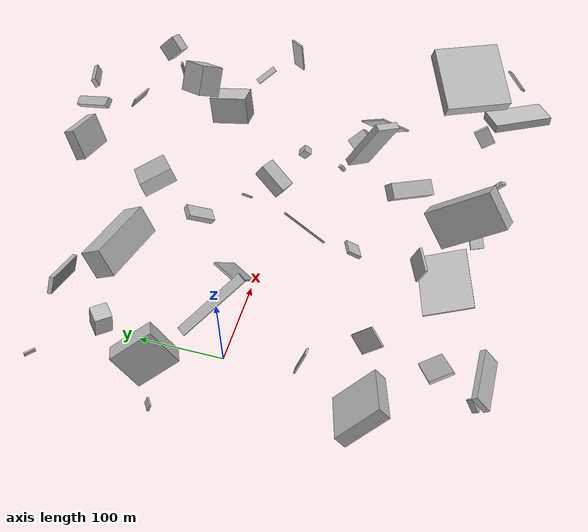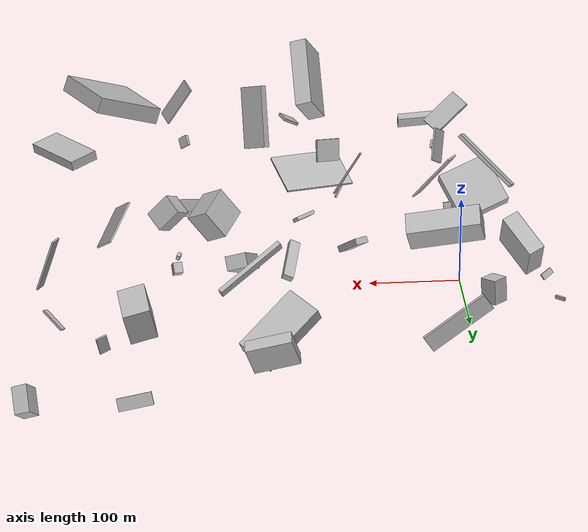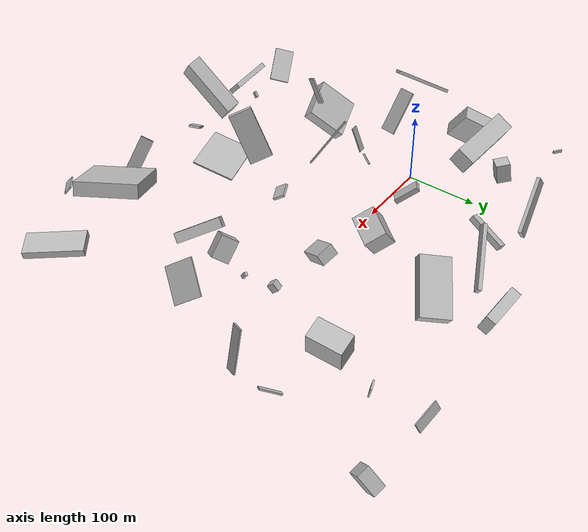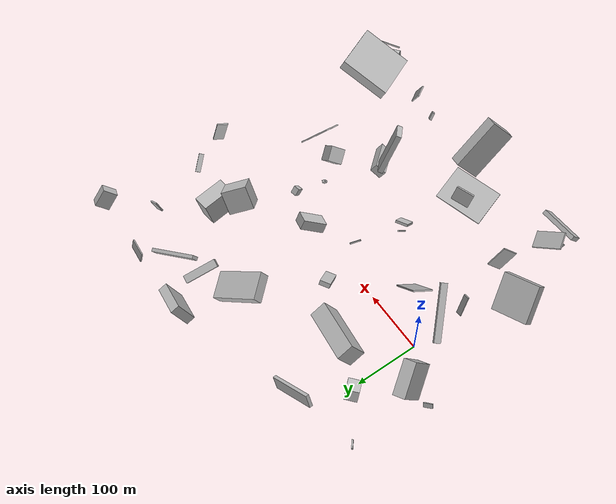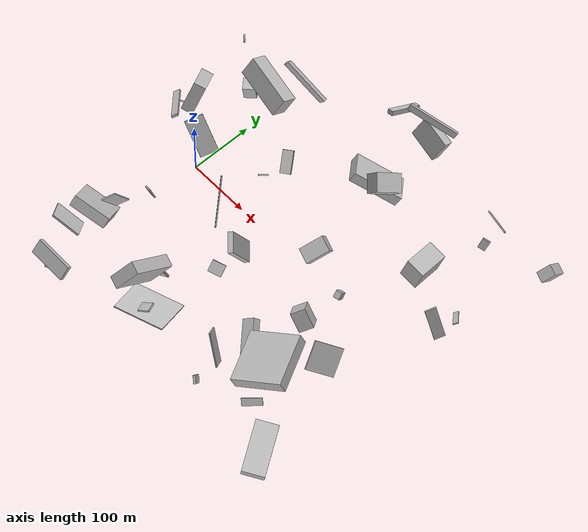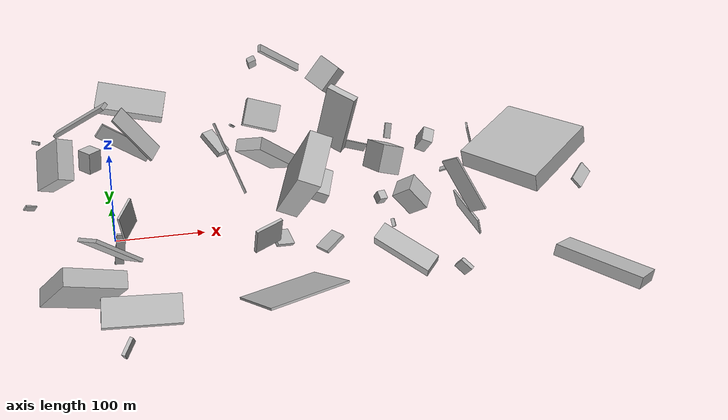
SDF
<sdf version="1.6">
 <world name="default">
  <scene>
   <sky><clouds><speed>12</speed></clouds></sky>
   <ambient>0.4 0.4 0.4 1</ambient>
   <background>0.7 0.7 0.7 1</background>
   <shadows>1</shadows>
  </scene>
  <gravity>0 0 -9.8066</gravity>
  <magnetic_field>6e-06 2.3e-05 -4.2e-05</magnetic_field>
  <physics default="0" name="default_physics" type="ode">
   <ode>
    <solver>
     <type>quick</type>
     <iters>10</iters>
     <sor>1.0</sor>
     <use_dynamic_moi_rescaling>0</use_dynamic_moi_rescaling>
    </solver>
    <constraints>
     <cfm>0</cfm>
     <erp>0.2</erp>
     <contact_max_correcting_vel>100</contact_max_correcting_vel>
     <contact_surface_layer>0.001</contact_surface_layer>
    </constraints>
   </ode>
   <max_step_size>0.004</max_step_size>
   <real_time_factor>1</real_time_factor>
   <real_time_update_rate>250</real_time_update_rate>
  </physics>
  <light name="sun" type="directional">
   <pose>0 0 10 0 0 0</pose>
   <diffuse>0.8 0.8 0.8 1</diffuse>
   <specular>0.2 0.2 0.2 1</specular>
   <attenuation>
    <range>1000</range>
    <constant>0.9</constant>
    <linear>0.01</linear>
    <quadratic>0.001</quadratic>
   </attenuation>
   <direction>-0.5 0.1 -0.9</direction>
  </light>
  <model name="building_1">
   <static>0</static>
   <pose>404.5158541136179 -255.42333435337554 122.44898582381987 -0.7624502686276993 -0.21771338707188184 0.7183787056705205</pose>
   <link name="link">
    <gravity>0</gravity>
    <pose>0 0 5.5 0 0 0</pose>
    <collision name="collision"><geometry><box><size>30 2 11</size></box></geometry></collision>
    <visual name="visual">
     <cast_shadows>0</cast_shadows>
     <geometry><box><size>30 2 11</size></box></geometry>
     <material>
      <script>
       <uri>model://HANNAS_wall/materials/scripts</uri>
       <uri>model://HANNAS_wall/materials/textures</uri>
       <name>vrc/HANNAS_wall</name>
      </script>
     </material>
    </visual>
   </link>
  </model>
  <model name="building_2">
   <static>0</static>
   <pose>-15.913608120768126 -220.39715237331205 89.95994051570334 1.1937777440840527 -0.8884978053453721 0.8804246469357664</pose>
   <link name="link">
    <gravity>0</gravity>
    <pose>0 0 13.0 0 0 0</pose>
    <collision name="collision"><geometry><box><size>3 47 26</size></box></geometry></collision>
    <visual name="visual">
     <cast_shadows>0</cast_shadows>
     <geometry><box><size>3 47 26</size></box></geometry>
     <material>
      <script>
       <uri>model://HANNAS_wall/materials/scripts</uri>
       <uri>model://HANNAS_wall/materials/textures</uri>
       <name>vrc/HANNAS_wall</name>
      </script>
     </material>
    </visual>
   </link>
  </model>
  <model name="building_3">
   <static>0</static>
   <pose>2.4273633094352762 -165.36447460527734 81.54105770859468 0.9768440852481814 -0.19734107897199302 2.614610898109586</pose>
   <link name="link">
    <gravity>0</gravity>
    <pose>0 0 11.5 0 0 0</pose>
    <collision name="collision"><geometry><box><size>2 37 23</size></box></geometry></collision>
    <visual name="visual">
     <cast_shadows>0</cast_shadows>
     <geometry><box><size>2 37 23</size></box></geometry>
     <material>
      <script>
       <uri>model://HANNAS_wall/materials/scripts</uri>
       <uri>model://HANNAS_wall/materials/textures</uri>
       <name>vrc/HANNAS_wall</name>
      </script>
     </material>
    </visual>
   </link>
  </model>
  <model name="building_4">
   <static>0</static>
   <pose>280.5730363883797 -154.8163963665489 28.461874816862295 2.4932673308005247 -0.3519441427999182 2.320280759417386</pose>
   <link name="link">
    <gravity>0</gravity>
    <pose>0 0 7.0 0 0 0</pose>
    <collision name="collision"><geometry><box><size>64 20 14</size></box></geometry></collision>
    <visual name="visual">
     <cast_shadows>0</cast_shadows>
     <geometry><box><size>64 20 14</size></box></geometry>
     <material>
      <script>
       <uri>model://HANNAS_wall/materials/scripts</uri>
       <uri>model://HANNAS_wall/materials/textures</uri>
       <name>vrc/HANNAS_wall</name>
      </script>
     </material>
    </visual>
   </link>
  </model>
  <model name="building_5">
   <static>0</static>
   <pose>209.34062145666257 217.79684176931468 153.42818705802267 -2.0086564979900534 0.3584459245184165 1.33781659191783</pose>
   <link name="link">
    <gravity>0</gravity>
    <pose>0 0 5.5 0 0 0</pose>
    <collision name="collision"><geometry><box><size>48 7 11</size></box></geometry></collision>
    <visual name="visual">
     <cast_shadows>0</cast_shadows>
     <geometry><box><size>48 7 11</size></box></geometry>
     <material>
      <script>
       <uri>model://HANNAS_wall/materials/scripts</uri>
       <uri>model://HANNAS_wall/materials/textures</uri>
       <name>vrc/HANNAS_wall</name>
      </script>
     </material>
    </visual>
   </link>
  </model>
  <model name="building_6">
   <static>0</static>
   <pose>221.3644481189088 -108.69629243077789 155.66329210517674 1.9019189378703016 0.35708411591068084 -0.739054854392633</pose>
   <link name="link">
    <gravity>0</gravity>
    <pose>0 0 4.0 0 0 0</pose>
    <collision name="collision"><geometry><box><size>30 68 8</size></box></geometry></collision>
    <visual name="visual">
     <cast_shadows>0</cast_shadows>
     <geometry><box><size>30 68 8</size></box></geometry>
     <material>
      <script>
       <uri>model://HANNAS_wall/materials/scripts</uri>
       <uri>model://HANNAS_wall/materials/textures</uri>
       <name>vrc/HANNAS_wall</name>
      </script>
     </material>
    </visual>
   </link>
  </model>
  <model name="building_7">
   <static>0</static>
   <pose>-34.07539028603997 -157.18862265309875 34.12260199763272 -2.424806915399598 -0.30116521131381757 -2.8539929199996967</pose>
   <link name="link">
    <gravity>0</gravity>
    <pose>0 0 8.5 0 0 0</pose>
    <collision name="collision"><geometry><box><size>59 59 17</size></box></geometry></collision>
    <visual name="visual">
     <cast_shadows>0</cast_shadows>
     <geometry><box><size>59 59 17</size></box></geometry>
     <material>
      <script>
       <uri>model://HANNAS_wall/materials/scripts</uri>
       <uri>model://HANNAS_wall/materials/textures</uri>
       <name>vrc/HANNAS_wall</name>
      </script>
     </material>
    </visual>
   </link>
  </model>
  <model name="building_8">
   <static>0</static>
   <pose>-52.32870671792048 15.051625144750112 123.44848041448307 -0.6381436687681178 -0.9109618876697785 3.136801920742593</pose>
   <link name="link">
    <gravity>0</gravity>
    <pose>0 0 40.0 0 0 0</pose>
    <collision name="collision"><geometry><box><size>4 10 80</size></box></geometry></collision>
    <visual name="visual">
     <cast_shadows>0</cast_shadows>
     <geometry><box><size>4 10 80</size></box></geometry>
     <material>
      <script>
       <uri>model://HANNAS_wall/materials/scripts</uri>
       <uri>model://HANNAS_wall/materials/textures</uri>
       <name>vrc/HANNAS_wall</name>
      </script>
     </material>
    </visual>
   </link>
  </model>
  <model name="building_9">
   <static>0</static>
   <pose>377.51432574234275 -97.08382687079943 32.42084039592836 0.844436757106749 -0.5998343468127806 1.9632602295896717</pose>
   <link name="link">
    <gravity>0</gravity>
    <pose>0 0 1.0 0 0 0</pose>
    <collision name="collision"><geometry><box><size>43 51 2</size></box></geometry></collision>
    <visual name="visual">
     <cast_shadows>0</cast_shadows>
     <geometry><box><size>43 51 2</size></box></geometry>
     <material>
      <script>
       <uri>model://HANNAS_wall/materials/scripts</uri>
       <uri>model://HANNAS_wall/materials/textures</uri>
       <name>vrc/HANNAS_wall</name>
      </script>
     </material>
    </visual>
   </link>
  </model>
  <model name="building_10">
   <static>0</static>
   <pose>146.38123777399232 -218.9410962674388 29.242644586468575 -0.2692366783813356 -0.05292237040645537 0.29092164713145396</pose>
   <link name="link">
    <gravity>0</gravity>
    <pose>0 0 1.0 0 0 0</pose>
    <collision name="collision"><geometry><box><size>80 59 2</size></box></geometry></collision>
    <visual name="visual">
     <cast_shadows>0</cast_shadows>
     <geometry><box><size>80 59 2</size></box></geometry>
     <material>
      <script>
       <uri>model://HANNAS_wall/materials/scripts</uri>
       <uri>model://HANNAS_wall/materials/textures</uri>
       <name>vrc/HANNAS_wall</name>
      </script>
     </material>
    </visual>
   </link>
  </model>
  <model name="building_11">
   <static>0</static>
   <pose>306.7924245358936 -7.017852035241025 24.204757914959146 1.5528885403592734 -0.7283693763387072 1.7623964139675055</pose>
   <link name="link">
    <gravity>0</gravity>
    <pose>0 0 5.0 0 0 0</pose>
    <collision name="collision"><geometry><box><size>11 12 10</size></box></geometry></collision>
    <visual name="visual">
     <cast_shadows>0</cast_shadows>
     <geometry><box><size>11 12 10</size></box></geometry>
     <material>
      <script>
       <uri>model://HANNAS_wall/materials/scripts</uri>
       <uri>model://HANNAS_wall/materials/textures</uri>
       <name>vrc/HANNAS_wall</name>
      </script>
     </material>
    </visual>
   </link>
  </model>
  <model name="building_12">
   <static>0</static>
   <pose>341.0041087272438 -214.6726022233562 123.52751783053333 1.1620771060595658 -0.060425616716604874 2.04303316602618</pose>
   <link name="link">
    <gravity>0</gravity>
    <pose>0 0 40.0 0 0 0</pose>
    <collision name="collision"><geometry><box><size>80 18 80</size></box></geometry></collision>
    <visual name="visual">
     <cast_shadows>0</cast_shadows>
     <geometry><box><size>80 18 80</size></box></geometry>
     <material>
      <script>
       <uri>model://HANNAS_wall/materials/scripts</uri>
       <uri>model://HANNAS_wall/materials/textures</uri>
       <name>vrc/HANNAS_wall</name>
      </script>
     </material>
    </visual>
   </link>
  </model>
  <model name="building_13">
   <static>0</static>
   <pose>10.640987676811369 -272.87670225127454 70.87065787270626 -3.0486001539160155 0.7074962814193969 1.6300241493056717</pose>
   <link name="link">
    <gravity>0</gravity>
    <pose>0 0 11.5 0 0 0</pose>
    <collision name="collision"><geometry><box><size>7 61 23</size></box></geometry></collision>
    <visual name="visual">
     <cast_shadows>0</cast_shadows>
     <geometry><box><size>7 61 23</size></box></geometry>
     <material>
      <script>
       <uri>model://HANNAS_wall/materials/scripts</uri>
       <uri>model://HANNAS_wall/materials/textures</uri>
       <name>vrc/HANNAS_wall</name>
      </script>
     </material>
    </visual>
   </link>
  </model>
  <model name="building_14">
   <static>0</static>
   <pose>130.58032101487134 -183.67420495042802 59.84389691718273 -0.3269947963721234 0.16351896898527277 -2.7116823082692862</pose>
   <link name="link">
    <gravity>0</gravity>
    <pose>0 0 12.5 0 0 0</pose>
    <collision name="collision"><geometry><box><size>29 3 25</size></box></geometry></collision>
    <visual name="visual">
     <cast_shadows>0</cast_shadows>
     <geometry><box><size>29 3 25</size></box></geometry>
     <material>
      <script>
       <uri>model://HANNAS_wall/materials/scripts</uri>
       <uri>model://HANNAS_wall/materials/textures</uri>
       <name>vrc/HANNAS_wall</name>
      </script>
     </material>
    </visual>
   </link>
  </model>
  <model name="building_15">
   <static>0</static>
   <pose>57.47481344742442 199.9693281108381 34.85067492419137 0.9857653199458694 0.13526639142955088 -1.4749051901289856</pose>
   <link name="link">
    <gravity>0</gravity>
    <pose>0 0 39.0 0 0 0</pose>
    <collision name="collision"><geometry><box><size>5 19 78</size></box></geometry></collision>
    <visual name="visual">
     <cast_shadows>0</cast_shadows>
     <geometry><box><size>5 19 78</size></box></geometry>
     <material>
      <script>
       <uri>model://HANNAS_wall/materials/scripts</uri>
       <uri>model://HANNAS_wall/materials/textures</uri>
       <name>vrc/HANNAS_wall</name>
      </script>
     </material>
    </visual>
   </link>
  </model>
  <model name="building_16">
   <static>0</static>
   <pose>-84.37574369397683 175.04403111870724 70.31617866594755 -1.4765086278777078 -0.03533450877757431 2.433532539612141</pose>
   <link name="link">
    <gravity>0</gravity>
    <pose>0 0 1.0 0 0 0</pose>
    <collision name="collision"><geometry><box><size>12 4 2</size></box></geometry></collision>
    <visual name="visual">
     <cast_shadows>0</cast_shadows>
     <geometry><box><size>12 4 2</size></box></geometry>
     <material>
      <script>
       <uri>model://HANNAS_wall/materials/scripts</uri>
       <uri>model://HANNAS_wall/materials/textures</uri>
       <name>vrc/HANNAS_wall</name>
      </script>
     </material>
    </visual>
   </link>
  </model>
  <model name="building_17">
   <static>0</static>
   <pose>32.40243216714957 126.48461082631098 123.18252882693938 0.3545854337534981 -1.009086329612658 1.1236110033147573</pose>
   <link name="link">
    <gravity>0</gravity>
    <pose>0 0 12.5 0 0 0</pose>
    <collision name="collision"><geometry><box><size>32 80 25</size></box></geometry></collision>
    <visual name="visual">
     <cast_shadows>0</cast_shadows>
     <geometry><box><size>32 80 25</size></box></geometry>
     <material>
      <script>
       <uri>model://HANNAS_wall/materials/scripts</uri>
       <uri>model://HANNAS_wall/materials/textures</uri>
       <name>vrc/HANNAS_wall</name>
      </script>
     </material>
    </visual>
   </link>
  </model>
  <model name="building_18">
   <static>0</static>
   <pose>405.0277918865915 195.1726885567997 44.21213157450162 1.2874437098414035 -0.18640219665958138 -1.1823772391657164</pose>
   <link name="link">
    <gravity>0</gravity>
    <pose>0 0 6.0 0 0 0</pose>
    <collision name="collision"><geometry><box><size>2 22 12</size></box></geometry></collision>
    <visual name="visual">
     <cast_shadows>0</cast_shadows>
     <geometry><box><size>2 22 12</size></box></geometry>
     <material>
      <script>
       <uri>model://HANNAS_wall/materials/scripts</uri>
       <uri>model://HANNAS_wall/materials/textures</uri>
       <name>vrc/HANNAS_wall</name>
      </script>
     </material>
    </visual>
   </link>
  </model>
  <model name="building_19">
   <static>0</static>
   <pose>440.3689349887604 100.12467404907355 12.971821226924332 -0.6997616881742155 -0.9526815871278554 3.117852670317113</pose>
   <link name="link">
    <gravity>0</gravity>
    <pose>0 0 15.0 0 0 0</pose>
    <collision name="collision"><geometry><box><size>2 8 30</size></box></geometry></collision>
    <visual name="visual">
     <cast_shadows>0</cast_shadows>
     <geometry><box><size>2 8 30</size></box></geometry>
     <material>
      <script>
       <uri>model://HANNAS_wall/materials/scripts</uri>
       <uri>model://HANNAS_wall/materials/textures</uri>
       <name>vrc/HANNAS_wall</name>
      </script>
     </material>
    </visual>
   </link>
  </model>
  <model name="building_20">
   <static>0</static>
   <pose>135.64195611496723 9.93531260601555 120.23593060370919 0.45977184502243973 -0.5989536181036812 2.391026363529689</pose>
   <link name="link">
    <gravity>0</gravity>
    <pose>0 0 1.0 0 0 0</pose>
    <collision name="collision"><geometry><box><size>2 16 2</size></box></geometry></collision>
    <visual name="visual">
     <cast_shadows>0</cast_shadows>
     <geometry><box><size>2 16 2</size></box></geometry>
     <material>
      <script>
       <uri>model://HANNAS_wall/materials/scripts</uri>
       <uri>model://HANNAS_wall/materials/textures</uri>
       <name>vrc/HANNAS_wall</name>
      </script>
     </material>
    </visual>
   </link>
  </model>
  <model name="building_21">
   <static>0</static>
   <pose>162.86568704894034 -246.91502858734228 79.77058123152395 0.09536557147686457 -1.0309341012208695 -2.8586471809440432</pose>
   <link name="link">
    <gravity>0</gravity>
    <pose>0 0 10.0 0 0 0</pose>
    <collision name="collision"><geometry><box><size>3 15 20</size></box></geometry></collision>
    <visual name="visual">
     <cast_shadows>0</cast_shadows>
     <geometry><box><size>3 15 20</size></box></geometry>
     <material>
      <script>
       <uri>model://HANNAS_wall/materials/scripts</uri>
       <uri>model://HANNAS_wall/materials/textures</uri>
       <name>vrc/HANNAS_wall</name>
      </script>
     </material>
    </visual>
   </link>
  </model>
  <model name="building_22">
   <static>0</static>
   <pose>278.929306548624 250.4161778868145 133.64568517737294 -0.6443845807072996 -0.9568026079187495 1.214996468478527</pose>
   <link name="link">
    <gravity>0</gravity>
    <pose>0 0 40.0 0 0 0</pose>
    <collision name="collision"><geometry><box><size>10 5 80</size></box></geometry></collision>
    <visual name="visual">
     <cast_shadows>0</cast_shadows>
     <geometry><box><size>10 5 80</size></box></geometry>
     <material>
      <script>
       <uri>model://HANNAS_wall/materials/scripts</uri>
       <uri>model://HANNAS_wall/materials/textures</uri>
       <name>vrc/HANNAS_wall</name>
      </script>
     </material>
    </visual>
   </link>
  </model>
  <model name="building_23">
   <static>0</static>
   <pose>-71.75275735621696 76.4932480987533 62.96609015287178 1.0446276151294653 0.2933347839412136 0.4311565845458056</pose>
   <link name="link">
    <gravity>0</gravity>
    <pose>0 0 25.5 0 0 0</pose>
    <collision name="collision"><geometry><box><size>19 47 51</size></box></geometry></collision>
    <visual name="visual">
     <cast_shadows>0</cast_shadows>
     <geometry><box><size>19 47 51</size></box></geometry>
     <material>
      <script>
       <uri>model://HANNAS_wall/materials/scripts</uri>
       <uri>model://HANNAS_wall/materials/textures</uri>
       <name>vrc/HANNAS_wall</name>
      </script>
     </material>
    </visual>
   </link>
  </model>
  <model name="building_24">
   <static>0</static>
   <pose>266.5607257851681 111.71890748393956 136.7248875590505 0.552757994233919 0.3430792904583097 1.0266054687940072</pose>
   <link name="link">
    <gravity>0</gravity>
    <pose>0 0 17.5 0 0 0</pose>
    <collision name="collision"><geometry><box><size>37 28 35</size></box></geometry></collision>
    <visual name="visual">
     <cast_shadows>0</cast_shadows>
     <geometry><box><size>37 28 35</size></box></geometry>
     <material>
      <script>
       <uri>model://HANNAS_wall/materials/scripts</uri>
       <uri>model://HANNAS_wall/materials/textures</uri>
       <name>vrc/HANNAS_wall</name>
      </script>
     </material>
    </visual>
   </link>
  </model>
  <model name="building_25">
   <static>0</static>
   <pose>311.71410106409473 -72.73641799102666 47.834768669490316 0.6957842010032123 0.826390153406635 -0.08237284985630913</pose>
   <link name="link">
    <gravity>0</gravity>
    <pose>0 0 12.0 0 0 0</pose>
    <collision name="collision"><geometry><box><size>31 23 24</size></box></geometry></collision>
    <visual name="visual">
     <cast_shadows>0</cast_shadows>
     <geometry><box><size>31 23 24</size></box></geometry>
     <material>
      <script>
       <uri>model://HANNAS_wall/materials/scripts</uri>
       <uri>model://HANNAS_wall/materials/textures</uri>
       <name>vrc/HANNAS_wall</name>
      </script>
     </material>
    </visual>
   </link>
  </model>
  <model name="building_26">
   <static>0</static>
   <pose>-84.17870974561554 52.327804123490154 28.469004172255104 1.1900964935209353 0.548957471030233 -1.1551625777802161</pose>
   <link name="link">
    <gravity>0</gravity>
    <pose>0 0 7.0 0 0 0</pose>
    <collision name="collision"><geometry><box><size>2 7 14</size></box></geometry></collision>
    <visual name="visual">
     <cast_shadows>0</cast_shadows>
     <geometry><box><size>2 7 14</size></box></geometry>
     <material>
      <script>
       <uri>model://HANNAS_wall/materials/scripts</uri>
       <uri>model://HANNAS_wall/materials/textures</uri>
       <name>vrc/HANNAS_wall</name>
      </script>
     </material>
    </visual>
   </link>
  </model>
  <model name="building_27">
   <static>0</static>
   <pose>1.9519505994513402 -270.3743364808202 33.759462665693746 2.848348735321906 -0.8289580247850699 -1.9073247193485563</pose>
   <link name="link">
    <gravity>0</gravity>
    <pose>0 0 7.5 0 0 0</pose>
    <collision name="collision"><geometry><box><size>9 3 15</size></box></geometry></collision>
    <visual name="visual">
     <cast_shadows>0</cast_shadows>
     <geometry><box><size>9 3 15</size></box></geometry>
     <material>
      <script>
       <uri>model://HANNAS_wall/materials/scripts</uri>
       <uri>model://HANNAS_wall/materials/textures</uri>
       <name>vrc/HANNAS_wall</name>
      </script>
     </material>
    </visual>
   </link>
  </model>
  <model name="building_28">
   <static>0</static>
   <pose>224.5971828337669 146.20078835794817 40.989556466509256 1.9722441965791455 0.9761341739707862 -2.0802497330037517</pose>
   <link name="link">
    <gravity>0</gravity>
    <pose>0 0 21.0 0 0 0</pose>
    <collision name="collision"><geometry><box><size>17 80 42</size></box></geometry></collision>
    <visual name="visual">
     <cast_shadows>0</cast_shadows>
     <geometry><box><size>17 80 42</size></box></geometry>
     <material>
      <script>
       <uri>model://HANNAS_wall/materials/scripts</uri>
       <uri>model://HANNAS_wall/materials/textures</uri>
       <name>vrc/HANNAS_wall</name>
      </script>
     </material>
    </visual>
   </link>
  </model>
  <model name="building_29">
   <static>0</static>
   <pose>230.55450668075974 17.222330769293492 44.022589784781076 -2.1628967462939364 -0.9423776835282763 -1.333577160625102</pose>
   <link name="link">
    <gravity>0</gravity>
    <pose>0 0 12.0 0 0 0</pose>
    <collision name="collision"><geometry><box><size>16 39 24</size></box></geometry></collision>
    <visual name="visual">
     <cast_shadows>0</cast_shadows>
     <geometry><box><size>16 39 24</size></box></geometry>
     <material>
      <script>
       <uri>model://HANNAS_wall/materials/scripts</uri>
       <uri>model://HANNAS_wall/materials/textures</uri>
       <name>vrc/HANNAS_wall</name>
      </script>
     </material>
    </visual>
   </link>
  </model>
  <model name="building_30">
   <static>0</static>
   <pose>345.7191007658878 109.64797978550268 38.11579431981924 1.817213800589765 0.1250166264764028 1.6578502712650531</pose>
   <link name="link">
    <gravity>0</gravity>
    <pose>0 0 15.0 0 0 0</pose>
    <collision name="collision"><geometry><box><size>49 37 30</size></box></geometry></collision>
    <visual name="visual">
     <cast_shadows>0</cast_shadows>
     <geometry><box><size>49 37 30</size></box></geometry>
     <material>
      <script>
       <uri>model://HANNAS_wall/materials/scripts</uri>
       <uri>model://HANNAS_wall/materials/textures</uri>
       <name>vrc/HANNAS_wall</name>
      </script>
     </material>
    </visual>
   </link>
  </model>
  <model name="building_31">
   <static>0</static>
   <pose>141.84878634775336 -243.53495637258328 125.59042073085133 0.7137235427943455 -0.328822681730063 2.8964919356769405</pose>
   <link name="link">
    <gravity>0</gravity>
    <pose>0 0 22.0 0 0 0</pose>
    <collision name="collision"><geometry><box><size>19 80 44</size></box></geometry></collision>
    <visual name="visual">
     <cast_shadows>0</cast_shadows>
     <geometry><box><size>19 80 44</size></box></geometry>
     <material>
      <script>
       <uri>model://HANNAS_wall/materials/scripts</uri>
       <uri>model://HANNAS_wall/materials/textures</uri>
       <name>vrc/HANNAS_wall</name>
      </script>
     </material>
    </visual>
   </link>
  </model>
  <model name="building_32">
   <static>0</static>
   <pose>442.46158518908544 -254.84544957355666 40.86714289592405 -1.4428640731166678 -0.10357669777609853 2.1448965483595632</pose>
   <link name="link">
    <gravity>0</gravity>
    <pose>0 0 17.0 0 0 0</pose>
    <collision name="collision"><geometry><box><size>80 11 34</size></box></geometry></collision>
    <visual name="visual">
     <cast_shadows>0</cast_shadows>
     <geometry><box><size>80 11 34</size></box></geometry>
     <material>
      <script>
       <uri>model://HANNAS_wall/materials/scripts</uri>
       <uri>model://HANNAS_wall/materials/textures</uri>
       <name>vrc/HANNAS_wall</name>
      </script>
     </material>
    </visual>
   </link>
  </model>
  <model name="building_33">
   <static>0</static>
   <pose>309.4615850447705 -57.67366839888432 12.750290780684228 2.1931641280552703 0.9782897429479939 -1.4135461082572993</pose>
   <link name="link">
    <gravity>0</gravity>
    <pose>0 0 2.0 0 0 0</pose>
    <collision name="collision"><geometry><box><size>9 5 4</size></box></geometry></collision>
    <visual name="visual">
     <cast_shadows>0</cast_shadows>
     <geometry><box><size>9 5 4</size></box></geometry>
     <material>
      <script>
       <uri>model://HANNAS_wall/materials/scripts</uri>
       <uri>model://HANNAS_wall/materials/textures</uri>
       <name>vrc/HANNAS_wall</name>
      </script>
     </material>
    </visual>
   </link>
  </model>
  <model name="building_34">
   <static>0</static>
   <pose>484.3411292862434 234.58316428611457 21.865878321027072 -2.6873834871666737 -0.6651414482182518 1.0235929186025152</pose>
   <link name="link">
    <gravity>0</gravity>
    <pose>0 0 15.0 0 0 0</pose>
    <collision name="collision"><geometry><box><size>24 17 30</size></box></geometry></collision>
    <visual name="visual">
     <cast_shadows>0</cast_shadows>
     <geometry><box><size>24 17 30</size></box></geometry>
     <material>
      <script>
       <uri>model://HANNAS_wall/materials/scripts</uri>
       <uri>model://HANNAS_wall/materials/textures</uri>
       <name>vrc/HANNAS_wall</name>
      </script>
     </material>
    </visual>
   </link>
  </model>
  <model name="building_35">
   <static>0</static>
   <pose>-27.12685957874921 133.50654600743127 58.808928996571126 1.7030965395088153 -0.07527528711520277 0.7402334848162959</pose>
   <link name="link">
    <gravity>0</gravity>
    <pose>0 0 9.5 0 0 0</pose>
    <collision name="collision"><geometry><box><size>19 27 19</size></box></geometry></collision>
    <visual name="visual">
     <cast_shadows>0</cast_shadows>
     <geometry><box><size>19 27 19</size></box></geometry>
     <material>
      <script>
       <uri>model://HANNAS_wall/materials/scripts</uri>
       <uri>model://HANNAS_wall/materials/textures</uri>
       <name>vrc/HANNAS_wall</name>
      </script>
     </material>
    </visual>
   </link>
  </model>
  <model name="building_36">
   <static>0</static>
   <pose>220.48784096570927 249.18553096783913 47.469407459586606 -0.28589412908875517 -0.40299401836837145 -1.5690070912978928</pose>
   <link name="link">
    <gravity>0</gravity>
    <pose>0 0 19.5 0 0 0</pose>
    <collision name="collision"><geometry><box><size>14 50 39</size></box></geometry></collision>
    <visual name="visual">
     <cast_shadows>0</cast_shadows>
     <geometry><box><size>14 50 39</size></box></geometry>
     <material>
      <script>
       <uri>model://HANNAS_wall/materials/scripts</uri>
       <uri>model://HANNAS_wall/materials/textures</uri>
       <name>vrc/HANNAS_wall</name>
      </script>
     </material>
    </visual>
   </link>
  </model>
  <model name="building_37">
   <static>0</static>
   <pose>124.36848722794154 67.3968231731097 82.6152972970537 0.6371273082645933 -0.0932649166842432 0.5754918585374166</pose>
   <link name="link">
    <gravity>0</gravity>
    <pose>0 0 3.5 0 0 0</pose>
    <collision name="collision"><geometry><box><size>16 34 7</size></box></geometry></collision>
    <visual name="visual">
     <cast_shadows>0</cast_shadows>
     <geometry><box><size>16 34 7</size></box></geometry>
     <material>
      <script>
       <uri>model://HANNAS_wall/materials/scripts</uri>
       <uri>model://HANNAS_wall/materials/textures</uri>
       <name>vrc/HANNAS_wall</name>
      </script>
     </material>
    </visual>
   </link>
  </model>
  <model name="building_38">
   <static>0</static>
   <pose>29.950278945264486 -11.763986213315723 125.55871892955223 2.2290361393389904 0.2497920767074602 -1.9936302198351088</pose>
   <link name="link">
    <gravity>0</gravity>
    <pose>0 0 1.0 0 0 0</pose>
    <collision name="collision"><geometry><box><size>28 59 2</size></box></geometry></collision>
    <visual name="visual">
     <cast_shadows>0</cast_shadows>
     <geometry><box><size>28 59 2</size></box></geometry>
     <material>
      <script>
       <uri>model://HANNAS_wall/materials/scripts</uri>
       <uri>model://HANNAS_wall/materials/textures</uri>
       <name>vrc/HANNAS_wall</name>
      </script>
     </material>
    </visual>
   </link>
  </model>
  <model name="building_39">
   <static>0</static>
   <pose>286.4568740769776 -255.00298772433462 57.04700106455482 -2.6371088608996773 -0.808778594701164 -1.2952743564466327</pose>
   <link name="link">
    <gravity>0</gravity>
    <pose>0 0 6.0 0 0 0</pose>
    <collision name="collision"><geometry><box><size>12 4 12</size></box></geometry></collision>
    <visual name="visual">
     <cast_shadows>0</cast_shadows>
     <geometry><box><size>12 4 12</size></box></geometry>
     <material>
      <script>
       <uri>model://HANNAS_wall/materials/scripts</uri>
       <uri>model://HANNAS_wall/materials/textures</uri>
       <name>vrc/HANNAS_wall</name>
      </script>
     </material>
    </visual>
   </link>
  </model>
  <model name="building_40">
   <static>0</static>
   <pose>452.90096529318737 43.83484780886188 62.722960756057596 1.2973822164841335 -0.1770206061027889 1.1606491307578486</pose>
   <link name="link">
    <gravity>0</gravity>
    <pose>0 0 1.0 0 0 0</pose>
    <collision name="collision"><geometry><box><size>17 59 2</size></box></geometry></collision>
    <visual name="visual">
     <cast_shadows>0</cast_shadows>
     <geometry><box><size>17 59 2</size></box></geometry>
     <material>
      <script>
       <uri>model://HANNAS_wall/materials/scripts</uri>
       <uri>model://HANNAS_wall/materials/textures</uri>
       <name>vrc/HANNAS_wall</name>
      </script>
     </material>
    </visual>
   </link>
  </model>
  <model name="building_41">
   <static>0</static>
   <pose>350.80718940444433 253.0917934262522 13.844225927965987 1.8456501356313222 -0.3968804945447025 1.3605650803114515</pose>
   <link name="link">
    <gravity>0</gravity>
    <pose>0 0 19.0 0 0 0</pose>
    <collision name="collision"><geometry><box><size>2 14 38</size></box></geometry></collision>
    <visual name="visual">
     <cast_shadows>0</cast_shadows>
     <geometry><box><size>2 14 38</size></box></geometry>
     <material>
      <script>
       <uri>model://HANNAS_wall/materials/scripts</uri>
       <uri>model://HANNAS_wall/materials/textures</uri>
       <name>vrc/HANNAS_wall</name>
      </script>
     </material>
    </visual>
   </link>
  </model>
  <model name="building_42">
   <static>0</static>
   <pose>120.52256523384679 -60.14354207085697 106.09066511142636 1.3527925073106488 -0.5454201239806946 -0.558922475061755</pose>
   <link name="link">
    <gravity>0</gravity>
    <pose>0 0 1.0 0 0 0</pose>
    <collision name="collision"><geometry><box><size>2 80 2</size></box></geometry></collision>
    <visual name="visual">
     <cast_shadows>0</cast_shadows>
     <geometry><box><size>2 80 2</size></box></geometry>
     <material>
      <script>
       <uri>model://HANNAS_wall/materials/scripts</uri>
       <uri>model://HANNAS_wall/materials/textures</uri>
       <name>vrc/HANNAS_wall</name>
      </script>
     </material>
    </visual>
   </link>
  </model>
  <model name="building_43">
   <static>0</static>
   <pose>296.4461047173115 -222.66817451132619 114.99322911982216 1.110944825066561 -0.3028285467733455 0.6118158602619524</pose>
   <link name="link">
    <gravity>0</gravity>
    <pose>0 0 8.5 0 0 0</pose>
    <collision name="collision"><geometry><box><size>2 54 17</size></box></geometry></collision>
    <visual name="visual">
     <cast_shadows>0</cast_shadows>
     <geometry><box><size>2 54 17</size></box></geometry>
     <material>
      <script>
       <uri>model://HANNAS_wall/materials/scripts</uri>
       <uri>model://HANNAS_wall/materials/textures</uri>
       <name>vrc/HANNAS_wall</name>
      </script>
     </material>
    </visual>
   </link>
  </model>
  <model name="building_44">
   <static>0</static>
   <pose>173.87531285356934 -101.994764239026 28.674508621915585 -1.3309623695114052 -0.6194855566234889 1.83264872600889</pose>
   <link name="link">
    <gravity>0</gravity>
    <pose>0 0 10.5 0 0 0</pose>
    <collision name="collision"><geometry><box><size>18 4 21</size></box></geometry></collision>
    <visual name="visual">
     <cast_shadows>0</cast_shadows>
     <geometry><box><size>18 4 21</size></box></geometry>
     <material>
      <script>
       <uri>model://HANNAS_wall/materials/scripts</uri>
       <uri>model://HANNAS_wall/materials/textures</uri>
       <name>vrc/HANNAS_wall</name>
      </script>
     </material>
    </visual>
   </link>
  </model>
  <model name="building_45">
   <static>0</static>
   <pose>6.778452226539694 -88.91434301825144 29.319903607741587 -1.47178765989077 -0.32036816348596453 1.5445323618093674</pose>
   <link name="link">
    <gravity>0</gravity>
    <pose>0 0 4.5 0 0 0</pose>
    <collision name="collision"><geometry><box><size>2 39 9</size></box></geometry></collision>
    <visual name="visual">
     <cast_shadows>0</cast_shadows>
     <geometry><box><size>2 39 9</size></box></geometry>
     <material>
      <script>
       <uri>model://HANNAS_wall/materials/scripts</uri>
       <uri>model://HANNAS_wall/materials/textures</uri>
       <name>vrc/HANNAS_wall</name>
      </script>
     </material>
    </visual>
   </link>
  </model>
 </world>
</sdf>
